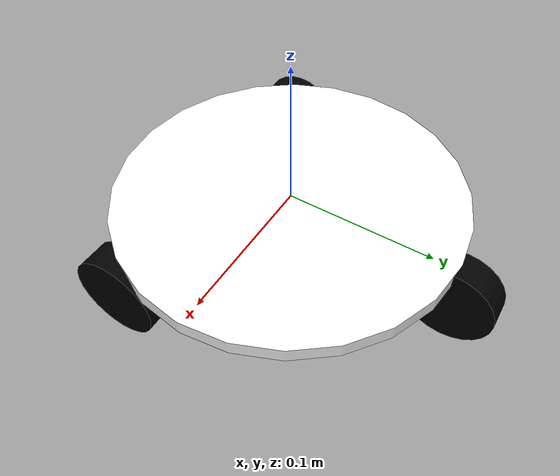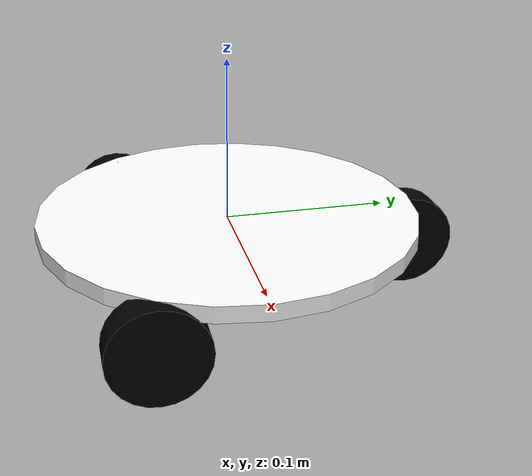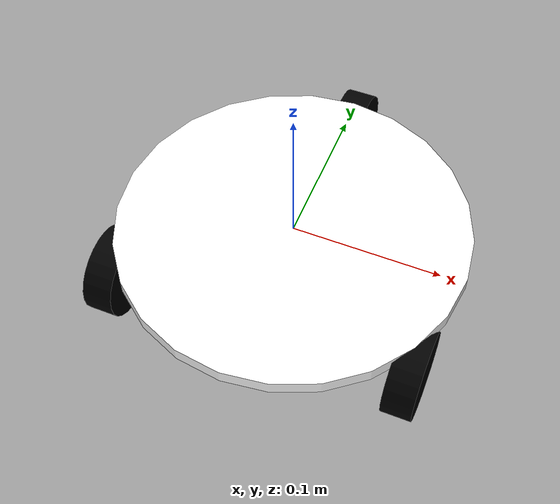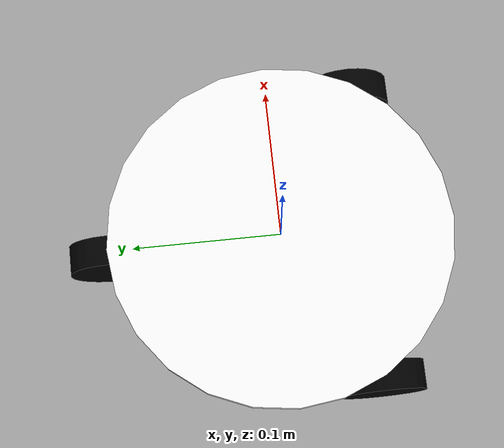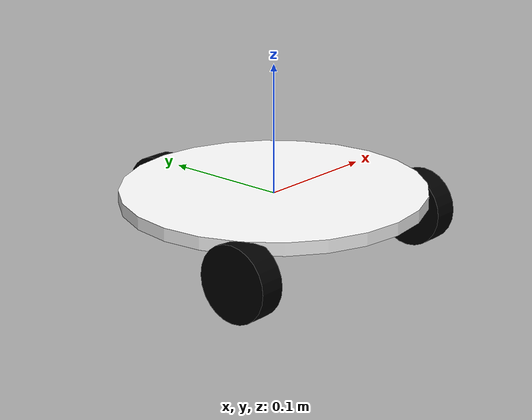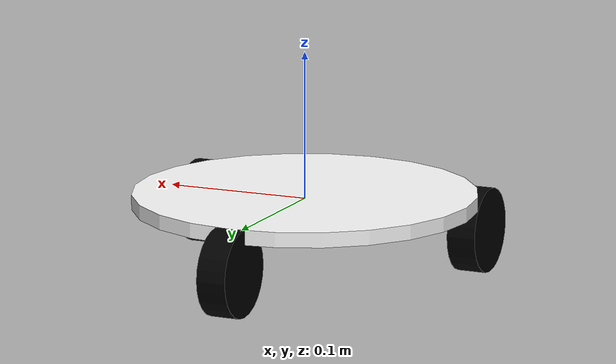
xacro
<?xml version="1.0"?>

<robot name="tmrobot"
    xmlns:xi="http://www.w3.org/2001/XInclude"
    xmlns:gazebo="http://playerstage.sourceforge.net/gazebo/xmlschema/#gz"
    xmlns:model="http://playerstage.sourceforge.net/gazebo/xmlschema/#model"
    xmlns:sensor="http://playerstage.sourceforge.net/gazebo/xmlschema/#sensor"
    xmlns:body="http://playerstage.sourceforge.net/gazebo/xmlschema/#body"
    xmlns:geom="http://playerstage.sourceforge.net/gazebo/xmlschema/#geom"
    xmlns:joint="http://playerstage.sourceforge.net/gazebo/xmlschema/#joint"
    xmlns:controller="http://playerstage.sourceforge.net/gazebo/xmlschema/#controller"

    xmlns:interface="http://playerstage.sourceforge.net/gazebo/xmlschema/#interface"
    xmlns:rendering="http://playerstage.sourceforge.net/gazebo/xmlschema/#rendering"
    xmlns:renderable="http://playerstage.sourceforge.net/gazebo/xmlschema/#renderable"

    xmlns:physics="http://playerstage.sourceforge.net/gazebo/xmlschema/#physics"
    xmlns:xacro="http://ros.org/wiki/xacro">

  <include filename="$(find tmrobot_description)/urdf/tmrobot_body.urdf.xacro" />

  <!-- Body of SmartCar, with plates, standoffs and Create (including sim sensors) -->

  <tmrobot_body/>

  <tmrobot_sim/>

</robot>

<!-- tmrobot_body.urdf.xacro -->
<robot name="tmrobot" xmlns:xacro="http://ros.org/wiki/xacro">
  <property name="M_PI" value="3.1415926535897931"/>

  <!-- Macro for SmartCar body. Including Gazebo extensions, but does not include Kinect -->
  <include filename="$(find tmrobot_description)/urdf/gazebo.urdf.xacro"/>

  <property name="base_x" value="0.33" />
  <property name="base_y" value="0.33" />

  <xacro:macro name="tmrobot_body">

	<link name="base_link">
		<visual>
			<geometry>
				<cylinder length=".01" radius="0.117"/>
			</geometry>
			<origin rpy="0 0 1.57075" xyz="0 0 0"/>
			<material name="blue">
				<color rgba="1 1 1 1"/>
			</material>
		</visual>
	</link>

	<joint name="front_wheel_joint" type="continuous">
		<axis xyz="0 0 1"/>
		<parent link="base_link"/>
		<child link="front_wheel"/>
		<origin rpy="0 1.57075 0" xyz="0 0.117 -0.024"/>
		<joint_properties damping="0.0" friction="0.0"/>
	</joint>

	<link name="front_wheel">
		<visual>
			<geometry>
				<cylinder length=".02" radius="0.029"/>
			</geometry>
			<origin rpy="0 0 1.57075" xyz="0 0 0"/>
			<material name="black">
				<color rgba="0 0 0 1"/>
			</material>
		</visual>
	</link>

	<joint name="behind_left_wheel_joint" type="continuous">
		<axis xyz="0 0 1"/>
		<parent link="base_link"/>
		<child link="behind_left_wheel"/>
		<origin rpy="0 1.57075 0" xyz="-0.1013 -0.0585 -0.024"/>
		<joint_properties damping="0.0" friction="0.0"/>
	</joint>

	<link name="behind_left_wheel">
		<visual>
			<geometry>
				<cylinder length=".02" radius="0.029"/>
			</geometry>
			<origin rpy="0 0 1.57075" xyz="0 0 0"/>
			<material name="black">
				<color rgba="0 0 0 1"/>
			</material>
		</visual>
	</link>

	<joint name="behind_right_wheel_joint" type="continuous">
		<axis xyz="0 0 1"/>
		<parent link="base_link"/>
		<child link="behind_right_wheel"/>
		<origin rpy="0 1.57075 0" xyz="0.1013 -0.0585 -0.024"/>
		<joint_properties damping="0.0" friction="0.0"/>
	</joint>

	<link name="behind_right_wheel">
		<visual>
			<geometry>
				<cylinder length=".02" radius="0.029"/>
			</geometry>
			<origin rpy="0 0 1.57075" xyz="0 0 0"/>
			<material name="black">
				<color rgba="0 0 0 1"/>
			</material>
		</visual>
	</link>

  </xacro:macro>

</robot>
